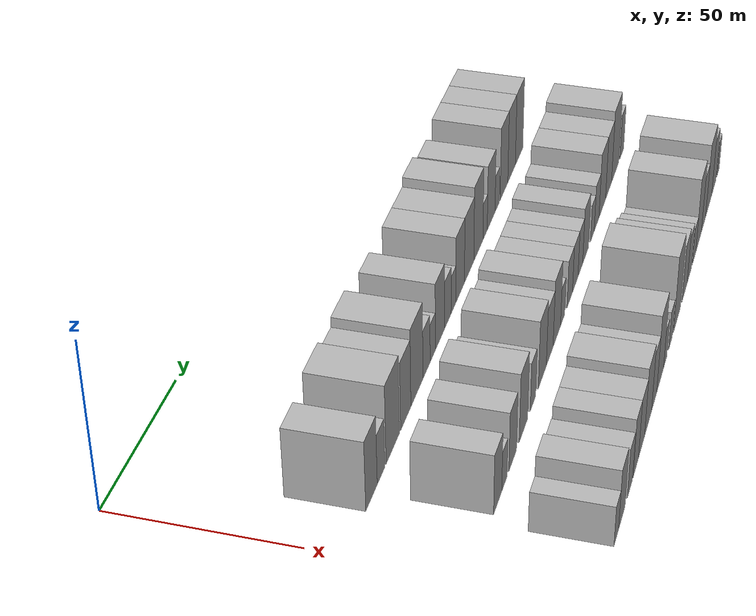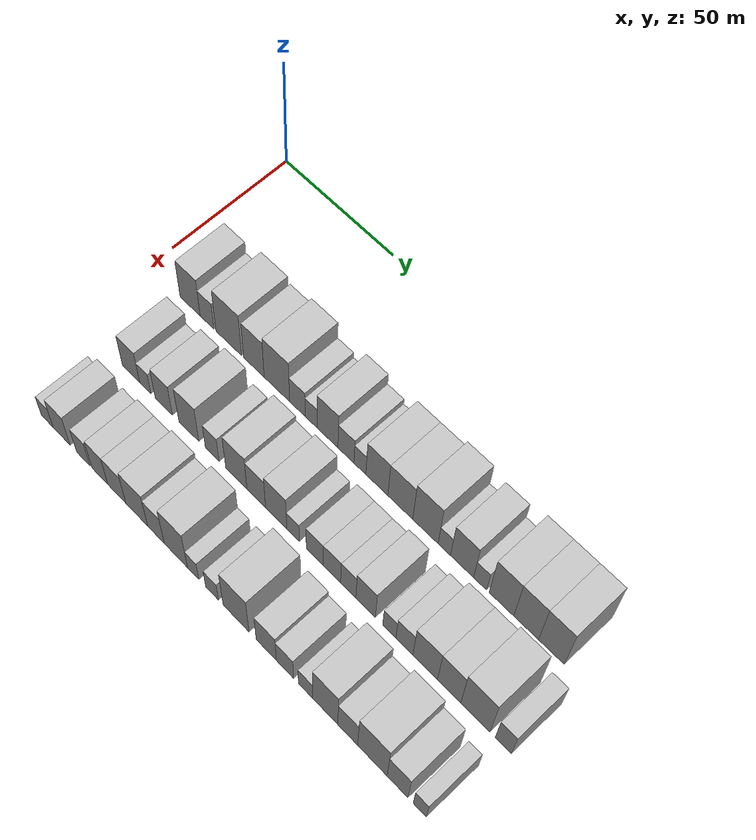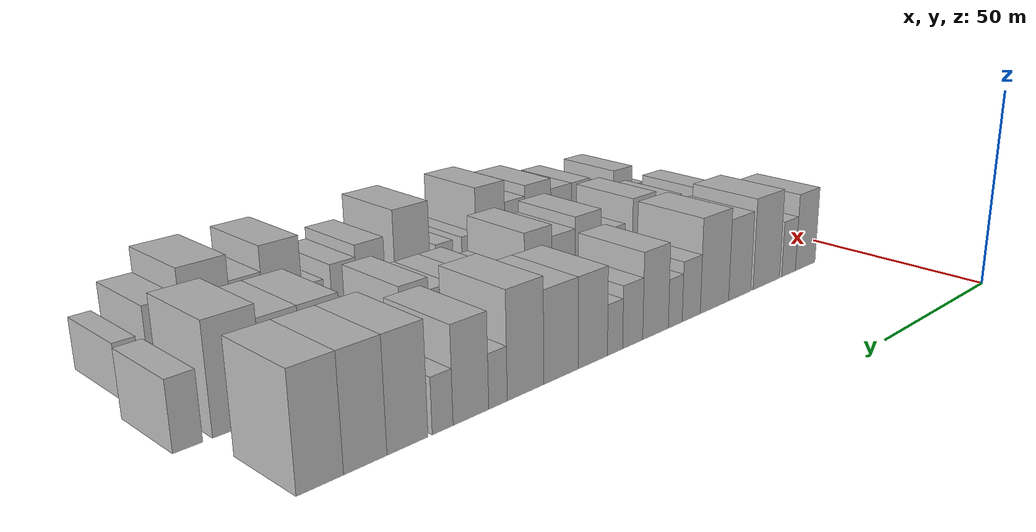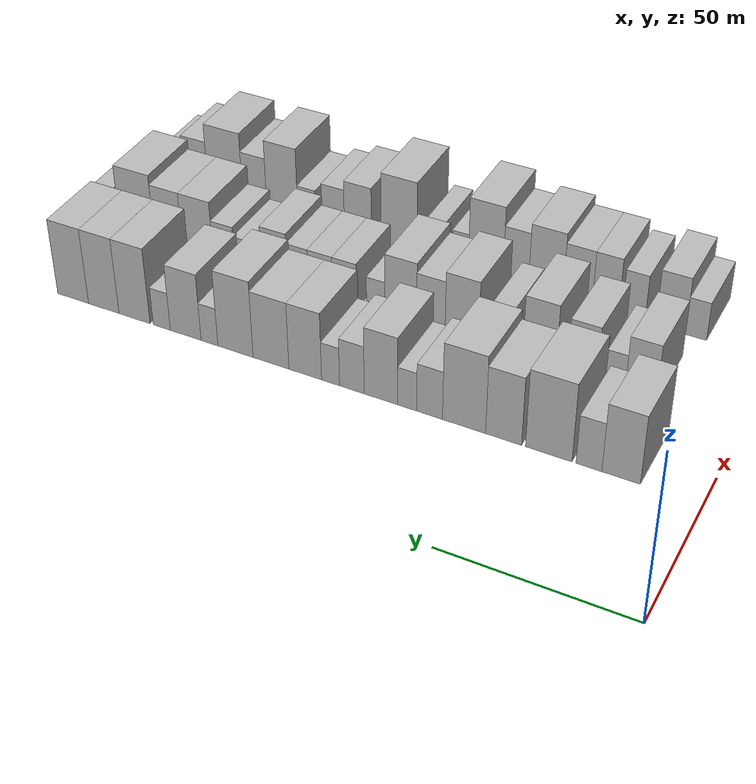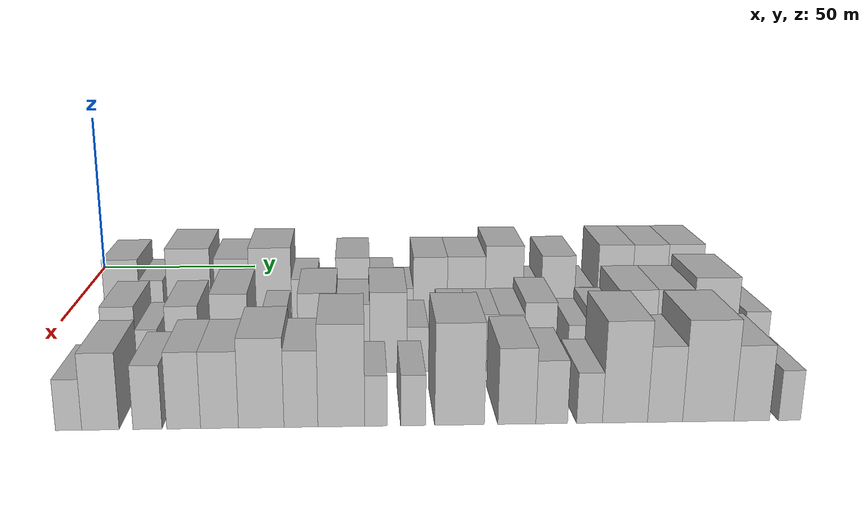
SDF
<sdf version="1.6">
 <world name="default">
  <model name="building_37">
   <static>1</static>
   <pose>50.0000 20.1480 0 0.000000 0.000000 0.000000</pose>
   <link name="link">
    <pose>0 0 10.50 0 0 0</pose>
    <collision name="collision"><geometry><box><size>20.0000 9.5758 21.0000</size></box></geometry></collision>
    <visual name="visual">
     <cast_shadows>0</cast_shadows>
     <geometry><box><size>20.0000 9.5758 21.0000</size></box></geometry>
     <material>
      <script>
       <uri>model://HANNAS_wall/materials/scripts</uri>
       <uri>model://HANNAS_wall/materials/textures</uri>
       <name>vrc/HANNAS_wall</name>
      </script>
     </material>
    </visual>
   </link>
  </model>
  <model name="building_38">
   <static>1</static>
   <pose>50.0000 28.1841 0 0.000000 0.000000 0.000000</pose>
   <link name="link">
    <pose>0 0 7.50 0 0 0</pose>
    <collision name="collision"><geometry><box><size>20.0000 6.4964 15.0000</size></box></geometry></collision>
    <visual name="visual">
     <cast_shadows>0</cast_shadows>
     <geometry><box><size>20.0000 6.4964 15.0000</size></box></geometry>
     <material>
      <script>
       <uri>model://HANNAS_wall/materials/scripts</uri>
       <uri>model://HANNAS_wall/materials/textures</uri>
       <name>vrc/HANNAS_wall</name>
      </script>
     </material>
    </visual>
   </link>
  </model>
  <model name="building_39">
   <static>1</static>
   <pose>50.0000 38.3976 0 0.000000 0.000000 0.000000</pose>
   <link name="link">
    <pose>0 0 12.00 0 0 0</pose>
    <collision name="collision"><geometry><box><size>20.0000 11.9307 24.0000</size></box></geometry></collision>
    <visual name="visual">
     <cast_shadows>0</cast_shadows>
     <geometry><box><size>20.0000 11.9307 24.0000</size></box></geometry>
     <material>
      <script>
       <uri>model://HANNAS_wall/materials/scripts</uri>
       <uri>model://HANNAS_wall/materials/textures</uri>
       <name>vrc/HANNAS_wall</name>
      </script>
     </material>
    </visual>
   </link>
  </model>
  <model name="building_40">
   <static>1</static>
   <pose>50.0000 50.0715 0 0.000000 0.000000 0.000000</pose>
   <link name="link">
    <pose>0 0 10.50 0 0 0</pose>
    <collision name="collision"><geometry><box><size>20.0000 9.4170 21.0000</size></box></geometry></collision>
    <visual name="visual">
     <cast_shadows>0</cast_shadows>
     <geometry><box><size>20.0000 9.4170 21.0000</size></box></geometry>
     <material>
      <script>
       <uri>model://HANNAS_wall/materials/scripts</uri>
       <uri>model://HANNAS_wall/materials/textures</uri>
       <name>vrc/HANNAS_wall</name>
      </script>
     </material>
    </visual>
   </link>
  </model>
  <model name="building_41">
   <static>1</static>
   <pose>50.0000 60.5149 0 0.000000 0.000000 0.000000</pose>
   <link name="link">
    <pose>0 0 12.00 0 0 0</pose>
    <collision name="collision"><geometry><box><size>20.0000 11.4699 24.0000</size></box></geometry></collision>
    <visual name="visual">
     <cast_shadows>0</cast_shadows>
     <geometry><box><size>20.0000 11.4699 24.0000</size></box></geometry>
     <material>
      <script>
       <uri>model://HANNAS_wall/materials/scripts</uri>
       <uri>model://HANNAS_wall/materials/textures</uri>
       <name>vrc/HANNAS_wall</name>
      </script>
     </material>
    </visual>
   </link>
  </model>
  <model name="building_42">
   <static>1</static>
   <pose>50.0000 69.7422 0 0.000000 0.000000 0.000000</pose>
   <link name="link">
    <pose>0 0 7.50 0 0 0</pose>
    <collision name="collision"><geometry><box><size>20.0000 6.9846 15.0000</size></box></geometry></collision>
    <visual name="visual">
     <cast_shadows>0</cast_shadows>
     <geometry><box><size>20.0000 6.9846 15.0000</size></box></geometry>
     <material>
      <script>
       <uri>model://HANNAS_wall/materials/scripts</uri>
       <uri>model://HANNAS_wall/materials/textures</uri>
       <name>vrc/HANNAS_wall</name>
      </script>
     </material>
    </visual>
   </link>
  </model>
  <model name="building_43">
   <static>1</static>
   <pose>50.0000 75.8215 0 0.000000 0.000000 0.000000</pose>
   <link name="link">
    <pose>0 0 6.00 0 0 0</pose>
    <collision name="collision"><geometry><box><size>20.0000 5.1740 12.0000</size></box></geometry></collision>
    <visual name="visual">
     <cast_shadows>0</cast_shadows>
     <geometry><box><size>20.0000 5.1740 12.0000</size></box></geometry>
     <material>
      <script>
       <uri>model://HANNAS_wall/materials/scripts</uri>
       <uri>model://HANNAS_wall/materials/textures</uri>
       <name>vrc/HANNAS_wall</name>
      </script>
     </material>
    </visual>
   </link>
  </model>
  <model name="building_44">
   <static>1</static>
   <pose>50.0000 83.0262 0 0.000000 0.000000 0.000000</pose>
   <link name="link">
    <pose>0 0 10.50 0 0 0</pose>
    <collision name="collision"><geometry><box><size>20.0000 9.2354 21.0000</size></box></geometry></collision>
    <visual name="visual">
     <cast_shadows>0</cast_shadows>
     <geometry><box><size>20.0000 9.2354 21.0000</size></box></geometry>
     <material>
      <script>
       <uri>model://HANNAS_wall/materials/scripts</uri>
       <uri>model://HANNAS_wall/materials/textures</uri>
       <name>vrc/HANNAS_wall</name>
      </script>
     </material>
    </visual>
   </link>
  </model>
  <model name="building_45">
   <static>1</static>
   <pose>50.0000 91.1143 0 0.000000 0.000000 0.000000</pose>
   <link name="link">
    <pose>0 0 7.50 0 0 0</pose>
    <collision name="collision"><geometry><box><size>20.0000 6.9408 15.0000</size></box></geometry></collision>
    <visual name="visual">
     <cast_shadows>0</cast_shadows>
     <geometry><box><size>20.0000 6.9408 15.0000</size></box></geometry>
     <material>
      <script>
       <uri>model://HANNAS_wall/materials/scripts</uri>
       <uri>model://HANNAS_wall/materials/textures</uri>
       <name>vrc/HANNAS_wall</name>
      </script>
     </material>
    </visual>
   </link>
  </model>
  <model name="building_46">
   <static>1</static>
   <pose>50.0000 97.1220 0 0.000000 0.000000 0.000000</pose>
   <link name="link">
    <pose>0 0 6.00 0 0 0</pose>
    <collision name="collision"><geometry><box><size>20.0000 5.0745 12.0000</size></box></geometry></collision>
    <visual name="visual">
     <cast_shadows>0</cast_shadows>
     <geometry><box><size>20.0000 5.0745 12.0000</size></box></geometry>
     <material>
      <script>
       <uri>model://HANNAS_wall/materials/scripts</uri>
       <uri>model://HANNAS_wall/materials/textures</uri>
       <name>vrc/HANNAS_wall</name>
      </script>
     </material>
    </visual>
   </link>
  </model>
  <model name="building_47">
   <static>1</static>
   <pose>50.0000 104.3414 0 0.000000 0.000000 0.000000</pose>
   <link name="link">
    <pose>0 0 10.50 0 0 0</pose>
    <collision name="collision"><geometry><box><size>20.0000 9.3645 21.0000</size></box></geometry></collision>
    <visual name="visual">
     <cast_shadows>0</cast_shadows>
     <geometry><box><size>20.0000 9.3645 21.0000</size></box></geometry>
     <material>
      <script>
       <uri>model://HANNAS_wall/materials/scripts</uri>
       <uri>model://HANNAS_wall/materials/textures</uri>
       <name>vrc/HANNAS_wall</name>
      </script>
     </material>
    </visual>
   </link>
  </model>
  <model name="building_48">
   <static>1</static>
   <pose>50.0000 114.2384 0 0.000000 0.000000 0.000000</pose>
   <link name="link">
    <pose>0 0 10.50 0 0 0</pose>
    <collision name="collision"><geometry><box><size>20.0000 10.4295 21.0000</size></box></geometry></collision>
    <visual name="visual">
     <cast_shadows>0</cast_shadows>
     <geometry><box><size>20.0000 10.4295 21.0000</size></box></geometry>
     <material>
      <script>
       <uri>model://HANNAS_wall/materials/scripts</uri>
       <uri>model://HANNAS_wall/materials/textures</uri>
       <name>vrc/HANNAS_wall</name>
      </script>
     </material>
    </visual>
   </link>
  </model>
  <model name="building_49">
   <static>1</static>
   <pose>50.0000 124.6758 0 0.000000 0.000000 0.000000</pose>
   <link name="link">
    <pose>0 0 12.00 0 0 0</pose>
    <collision name="collision"><geometry><box><size>20.0000 10.4453 24.0000</size></box></geometry></collision>
    <visual name="visual">
     <cast_shadows>0</cast_shadows>
     <geometry><box><size>20.0000 10.4453 24.0000</size></box></geometry>
     <material>
      <script>
       <uri>model://HANNAS_wall/materials/scripts</uri>
       <uri>model://HANNAS_wall/materials/textures</uri>
       <name>vrc/HANNAS_wall</name>
      </script>
     </material>
    </visual>
   </link>
  </model>
  <model name="building_50">
   <static>1</static>
   <pose>50.0000 132.4219 0 0.000000 0.000000 0.000000</pose>
   <link name="link">
    <pose>0 0 6.00 0 0 0</pose>
    <collision name="collision"><geometry><box><size>20.0000 5.0470 12.0000</size></box></geometry></collision>
    <visual name="visual">
     <cast_shadows>0</cast_shadows>
     <geometry><box><size>20.0000 5.0470 12.0000</size></box></geometry>
     <material>
      <script>
       <uri>model://HANNAS_wall/materials/scripts</uri>
       <uri>model://HANNAS_wall/materials/textures</uri>
       <name>vrc/HANNAS_wall</name>
      </script>
     </material>
    </visual>
   </link>
  </model>
  <model name="building_51">
   <static>1</static>
   <pose>50.0000 139.6037 0 0.000000 0.000000 0.000000</pose>
   <link name="link">
    <pose>0 0 10.50 0 0 0</pose>
    <collision name="collision"><geometry><box><size>20.0000 9.3167 21.0000</size></box></geometry></collision>
    <visual name="visual">
     <cast_shadows>0</cast_shadows>
     <geometry><box><size>20.0000 9.3167 21.0000</size></box></geometry>
     <material>
      <script>
       <uri>model://HANNAS_wall/materials/scripts</uri>
       <uri>model://HANNAS_wall/materials/textures</uri>
       <name>vrc/HANNAS_wall</name>
      </script>
     </material>
    </visual>
   </link>
  </model>
  <model name="building_52">
   <static>1</static>
   <pose>50.0000 146.8711 0 0.000000 0.000000 0.000000</pose>
   <link name="link">
    <pose>0 0 6.00 0 0 0</pose>
    <collision name="collision"><geometry><box><size>20.0000 5.2180 12.0000</size></box></geometry></collision>
    <visual name="visual">
     <cast_shadows>0</cast_shadows>
     <geometry><box><size>20.0000 5.2180 12.0000</size></box></geometry>
     <material>
      <script>
       <uri>model://HANNAS_wall/materials/scripts</uri>
       <uri>model://HANNAS_wall/materials/textures</uri>
       <name>vrc/HANNAS_wall</name>
      </script>
     </material>
    </visual>
   </link>
  </model>
  <model name="building_53">
   <static>1</static>
   <pose>50.0000 155.3191 0 0.000000 0.000000 0.000000</pose>
   <link name="link">
    <pose>0 0 12.00 0 0 0</pose>
    <collision name="collision"><geometry><box><size>20.0000 9.6781 24.0000</size></box></geometry></collision>
    <visual name="visual">
     <cast_shadows>0</cast_shadows>
     <geometry><box><size>20.0000 9.6781 24.0000</size></box></geometry>
     <material>
      <script>
       <uri>model://HANNAS_wall/materials/scripts</uri>
       <uri>model://HANNAS_wall/materials/textures</uri>
       <name>vrc/HANNAS_wall</name>
      </script>
     </material>
    </visual>
   </link>
  </model>
  <model name="building_54">
   <static>1</static>
   <pose>50.0000 164.9699 0 0.000000 0.000000 0.000000</pose>
   <link name="link">
    <pose>0 0 12.00 0 0 0</pose>
    <collision name="collision"><geometry><box><size>20.0000 9.6233 24.0000</size></box></geometry></collision>
    <visual name="visual">
     <cast_shadows>0</cast_shadows>
     <geometry><box><size>20.0000 9.6233 24.0000</size></box></geometry>
     <material>
      <script>
       <uri>model://HANNAS_wall/materials/scripts</uri>
       <uri>model://HANNAS_wall/materials/textures</uri>
       <name>vrc/HANNAS_wall</name>
      </script>
     </material>
    </visual>
   </link>
  </model>
  <model name="building_55">
   <static>1</static>
   <pose>50.0000 174.7138 0 0.000000 0.000000 0.000000</pose>
   <link name="link">
    <pose>0 0 12.00 0 0 0</pose>
    <collision name="collision"><geometry><box><size>20.0000 9.8645 24.0000</size></box></geometry></collision>
    <visual name="visual">
     <cast_shadows>0</cast_shadows>
     <geometry><box><size>20.0000 9.8645 24.0000</size></box></geometry>
     <material>
      <script>
       <uri>model://HANNAS_wall/materials/scripts</uri>
       <uri>model://HANNAS_wall/materials/textures</uri>
       <name>vrc/HANNAS_wall</name>
      </script>
     </material>
    </visual>
   </link>
  </model>
  <model name="building_116">
   <static>1</static>
   <pose>79.0000 25.8752 0 0.000000 0.000000 0.000000</pose>
   <link name="link">
    <pose>0 0 9.00 0 0 0</pose>
    <collision name="collision"><geometry><box><size>20.0000 8.2229 18.0000</size></box></geometry></collision>
    <visual name="visual">
     <cast_shadows>0</cast_shadows>
     <geometry><box><size>20.0000 8.2229 18.0000</size></box></geometry>
     <material>
      <script>
       <uri>model://HANNAS_wall/materials/scripts</uri>
       <uri>model://HANNAS_wall/materials/textures</uri>
       <name>vrc/HANNAS_wall</name>
      </script>
     </material>
    </visual>
   </link>
  </model>
  <model name="building_117">
   <static>1</static>
   <pose>79.0000 32.6592 0 0.000000 0.000000 0.000000</pose>
   <link name="link">
    <pose>0 0 6.00 0 0 0</pose>
    <collision name="collision"><geometry><box><size>20.0000 5.3452 12.0000</size></box></geometry></collision>
    <visual name="visual">
     <cast_shadows>0</cast_shadows>
     <geometry><box><size>20.0000 5.3452 12.0000</size></box></geometry>
     <material>
      <script>
       <uri>model://HANNAS_wall/materials/scripts</uri>
       <uri>model://HANNAS_wall/materials/textures</uri>
       <name>vrc/HANNAS_wall</name>
      </script>
     </material>
    </visual>
   </link>
  </model>
  <model name="building_118">
   <static>1</static>
   <pose>79.0000 41.3565 0 0.000000 0.000000 0.000000</pose>
   <link name="link">
    <pose>0 0 9.00 0 0 0</pose>
    <collision name="collision"><geometry><box><size>20.0000 8.0492 18.0000</size></box></geometry></collision>
    <visual name="visual">
     <cast_shadows>0</cast_shadows>
     <geometry><box><size>20.0000 8.0492 18.0000</size></box></geometry>
     <material>
      <script>
       <uri>model://HANNAS_wall/materials/scripts</uri>
       <uri>model://HANNAS_wall/materials/textures</uri>
       <name>vrc/HANNAS_wall</name>
      </script>
     </material>
    </visual>
   </link>
  </model>
  <model name="building_119">
   <static>1</static>
   <pose>79.0000 52.9645 0 0.000000 0.000000 0.000000</pose>
   <link name="link">
    <pose>0 0 10.50 0 0 0</pose>
    <collision name="collision"><geometry><box><size>20.0000 9.1668 21.0000</size></box></geometry></collision>
    <visual name="visual">
     <cast_shadows>0</cast_shadows>
     <geometry><box><size>20.0000 9.1668 21.0000</size></box></geometry>
     <material>
      <script>
       <uri>model://HANNAS_wall/materials/scripts</uri>
       <uri>model://HANNAS_wall/materials/textures</uri>
       <name>vrc/HANNAS_wall</name>
      </script>
     </material>
    </visual>
   </link>
  </model>
  <model name="building_120">
   <static>1</static>
   <pose>79.0000 63.6351 0 0.000000 0.000000 0.000000</pose>
   <link name="link">
    <pose>0 0 7.50 0 0 0</pose>
    <collision name="collision"><geometry><box><size>20.0000 6.1743 15.0000</size></box></geometry></collision>
    <visual name="visual">
     <cast_shadows>0</cast_shadows>
     <geometry><box><size>20.0000 6.1743 15.0000</size></box></geometry>
     <material>
      <script>
       <uri>model://HANNAS_wall/materials/scripts</uri>
       <uri>model://HANNAS_wall/materials/textures</uri>
       <name>vrc/HANNAS_wall</name>
      </script>
     </material>
    </visual>
   </link>
  </model>
  <model name="building_121">
   <static>1</static>
   <pose>79.0000 74.4459 0 0.000000 0.000000 0.000000</pose>
   <link name="link">
    <pose>0 0 10.50 0 0 0</pose>
    <collision name="collision"><geometry><box><size>20.0000 9.4473 21.0000</size></box></geometry></collision>
    <visual name="visual">
     <cast_shadows>0</cast_shadows>
     <geometry><box><size>20.0000 9.4473 21.0000</size></box></geometry>
     <material>
      <script>
       <uri>model://HANNAS_wall/materials/scripts</uri>
       <uri>model://HANNAS_wall/materials/textures</uri>
       <name>vrc/HANNAS_wall</name>
      </script>
     </material>
    </visual>
   </link>
  </model>
  <model name="building_122">
   <static>1</static>
   <pose>79.0000 83.2457 0 0.000000 0.000000 0.000000</pose>
   <link name="link">
    <pose>0 0 9.00 0 0 0</pose>
    <collision name="collision"><geometry><box><size>20.0000 8.1524 18.0000</size></box></geometry></collision>
    <visual name="visual">
     <cast_shadows>0</cast_shadows>
     <geometry><box><size>20.0000 8.1524 18.0000</size></box></geometry>
     <material>
      <script>
       <uri>model://HANNAS_wall/materials/scripts</uri>
       <uri>model://HANNAS_wall/materials/textures</uri>
       <name>vrc/HANNAS_wall</name>
      </script>
     </material>
    </visual>
   </link>
  </model>
  <model name="building_123">
   <static>1</static>
   <pose>79.0000 91.9345 0 0.000000 0.000000 0.000000</pose>
   <link name="link">
    <pose>0 0 10.50 0 0 0</pose>
    <collision name="collision"><geometry><box><size>20.0000 9.2253 21.0000</size></box></geometry></collision>
    <visual name="visual">
     <cast_shadows>0</cast_shadows>
     <geometry><box><size>20.0000 9.2253 21.0000</size></box></geometry>
     <material>
      <script>
       <uri>model://HANNAS_wall/materials/scripts</uri>
       <uri>model://HANNAS_wall/materials/textures</uri>
       <name>vrc/HANNAS_wall</name>
      </script>
     </material>
    </visual>
   </link>
  </model>
  <model name="building_124">
   <static>1</static>
   <pose>79.0000 99.2142 0 0.000000 0.000000 0.000000</pose>
   <link name="link">
    <pose>0 0 6.00 0 0 0</pose>
    <collision name="collision"><geometry><box><size>20.0000 5.3341 12.0000</size></box></geometry></collision>
    <visual name="visual">
     <cast_shadows>0</cast_shadows>
     <geometry><box><size>20.0000 5.3341 12.0000</size></box></geometry>
     <material>
      <script>
       <uri>model://HANNAS_wall/materials/scripts</uri>
       <uri>model://HANNAS_wall/materials/textures</uri>
       <name>vrc/HANNAS_wall</name>
      </script>
     </material>
    </visual>
   </link>
  </model>
  <model name="building_125">
   <static>1</static>
   <pose>79.0000 108.4288 0 0.000000 0.000000 0.000000</pose>
   <link name="link">
    <pose>0 0 7.50 0 0 0</pose>
    <collision name="collision"><geometry><box><size>20.0000 7.0950 15.0000</size></box></geometry></collision>
    <visual name="visual">
     <cast_shadows>0</cast_shadows>
     <geometry><box><size>20.0000 7.0950 15.0000</size></box></geometry>
     <material>
      <script>
       <uri>model://HANNAS_wall/materials/scripts</uri>
       <uri>model://HANNAS_wall/materials/textures</uri>
       <name>vrc/HANNAS_wall</name>
      </script>
     </material>
    </visual>
   </link>
  </model>
  <model name="building_126">
   <static>1</static>
   <pose>79.0000 115.6472 0 0.000000 0.000000 0.000000</pose>
   <link name="link">
    <pose>0 0 7.50 0 0 0</pose>
    <collision name="collision"><geometry><box><size>20.0000 7.3418 15.0000</size></box></geometry></collision>
    <visual name="visual">
     <cast_shadows>0</cast_shadows>
     <geometry><box><size>20.0000 7.3418 15.0000</size></box></geometry>
     <material>
      <script>
       <uri>model://HANNAS_wall/materials/scripts</uri>
       <uri>model://HANNAS_wall/materials/textures</uri>
       <name>vrc/HANNAS_wall</name>
      </script>
     </material>
    </visual>
   </link>
  </model>
  <model name="building_127">
   <static>1</static>
   <pose>79.0000 122.4901 0 0.000000 0.000000 0.000000</pose>
   <link name="link">
    <pose>0 0 7.50 0 0 0</pose>
    <collision name="collision"><geometry><box><size>20.0000 6.3440 15.0000</size></box></geometry></collision>
    <visual name="visual">
     <cast_shadows>0</cast_shadows>
     <geometry><box><size>20.0000 6.3440 15.0000</size></box></geometry>
     <material>
      <script>
       <uri>model://HANNAS_wall/materials/scripts</uri>
       <uri>model://HANNAS_wall/materials/textures</uri>
       <name>vrc/HANNAS_wall</name>
      </script>
     </material>
    </visual>
   </link>
  </model>
  <model name="building_128">
   <static>1</static>
   <pose>79.0000 129.6379 0 0.000000 0.000000 0.000000</pose>
   <link name="link">
    <pose>0 0 9.00 0 0 0</pose>
    <collision name="collision"><geometry><box><size>20.0000 7.9515 18.0000</size></box></geometry></collision>
    <visual name="visual">
     <cast_shadows>0</cast_shadows>
     <geometry><box><size>20.0000 7.9515 18.0000</size></box></geometry>
     <material>
      <script>
       <uri>model://HANNAS_wall/materials/scripts</uri>
       <uri>model://HANNAS_wall/materials/textures</uri>
       <name>vrc/HANNAS_wall</name>
      </script>
     </material>
    </visual>
   </link>
  </model>
  <model name="building_129">
   <static>1</static>
   <pose>79.0000 139.2753 0 0.000000 0.000000 0.000000</pose>
   <link name="link">
    <pose>0 0 6.00 0 0 0</pose>
    <collision name="collision"><geometry><box><size>20.0000 5.3234 12.0000</size></box></geometry></collision>
    <visual name="visual">
     <cast_shadows>0</cast_shadows>
     <geometry><box><size>20.0000 5.3234 12.0000</size></box></geometry>
     <material>
      <script>
       <uri>model://HANNAS_wall/materials/scripts</uri>
       <uri>model://HANNAS_wall/materials/textures</uri>
       <name>vrc/HANNAS_wall</name>
      </script>
     </material>
    </visual>
   </link>
  </model>
  <model name="building_130">
   <static>1</static>
   <pose>79.0000 145.3394 0 0.000000 0.000000 0.000000</pose>
   <link name="link">
    <pose>0 0 7.50 0 0 0</pose>
    <collision name="collision"><geometry><box><size>20.0000 6.8048 15.0000</size></box></geometry></collision>
    <visual name="visual">
     <cast_shadows>0</cast_shadows>
     <geometry><box><size>20.0000 6.8048 15.0000</size></box></geometry>
     <material>
      <script>
       <uri>model://HANNAS_wall/materials/scripts</uri>
       <uri>model://HANNAS_wall/materials/textures</uri>
       <name>vrc/HANNAS_wall</name>
      </script>
     </material>
    </visual>
   </link>
  </model>
  <model name="building_131">
   <static>1</static>
   <pose>79.0000 153.6090 0 0.000000 0.000000 0.000000</pose>
   <link name="link">
    <pose>0 0 10.50 0 0 0</pose>
    <collision name="collision"><geometry><box><size>20.0000 9.7343 21.0000</size></box></geometry></collision>
    <visual name="visual">
     <cast_shadows>0</cast_shadows>
     <geometry><box><size>20.0000 9.7343 21.0000</size></box></geometry>
     <material>
      <script>
       <uri>model://HANNAS_wall/materials/scripts</uri>
       <uri>model://HANNAS_wall/materials/textures</uri>
       <name>vrc/HANNAS_wall</name>
      </script>
     </material>
    </visual>
   </link>
  </model>
  <model name="building_132">
   <static>1</static>
   <pose>79.0000 163.0174 0 0.000000 0.000000 0.000000</pose>
   <link name="link">
    <pose>0 0 10.50 0 0 0</pose>
    <collision name="collision"><geometry><box><size>20.0000 9.0825 21.0000</size></box></geometry></collision>
    <visual name="visual">
     <cast_shadows>0</cast_shadows>
     <geometry><box><size>20.0000 9.0825 21.0000</size></box></geometry>
     <material>
      <script>
       <uri>model://HANNAS_wall/materials/scripts</uri>
       <uri>model://HANNAS_wall/materials/textures</uri>
       <name>vrc/HANNAS_wall</name>
      </script>
     </material>
    </visual>
   </link>
  </model>
  <model name="building_133">
   <static>1</static>
   <pose>79.0000 173.1660 0 0.000000 0.000000 0.000000</pose>
   <link name="link">
    <pose>0 0 12.00 0 0 0</pose>
    <collision name="collision"><geometry><box><size>20.0000 11.2146 24.0000</size></box></geometry></collision>
    <visual name="visual">
     <cast_shadows>0</cast_shadows>
     <geometry><box><size>20.0000 11.2146 24.0000</size></box></geometry>
     <material>
      <script>
       <uri>model://HANNAS_wall/materials/scripts</uri>
       <uri>model://HANNAS_wall/materials/textures</uri>
       <name>vrc/HANNAS_wall</name>
      </script>
     </material>
    </visual>
   </link>
  </model>
  <model name="building_134">
   <static>1</static>
   <pose>79.0000 183.8312 0 0.000000 0.000000 0.000000</pose>
   <link name="link">
    <pose>0 0 7.50 0 0 0</pose>
    <collision name="collision"><geometry><box><size>20.0000 6.1160 15.0000</size></box></geometry></collision>
    <visual name="visual">
     <cast_shadows>0</cast_shadows>
     <geometry><box><size>20.0000 6.1160 15.0000</size></box></geometry>
     <material>
      <script>
       <uri>model://HANNAS_wall/materials/scripts</uri>
       <uri>model://HANNAS_wall/materials/textures</uri>
       <name>vrc/HANNAS_wall</name>
      </script>
     </material>
    </visual>
   </link>
  </model>
  <model name="building_189">
   <static>1</static>
   <pose>108.0000 21.1724 0 0.000000 0.000000 0.000000</pose>
   <link name="link">
    <pose>0 0 6.00 0 0 0</pose>
    <collision name="collision"><geometry><box><size>20.0000 5.7033 12.0000</size></box></geometry></collision>
    <visual name="visual">
     <cast_shadows>0</cast_shadows>
     <geometry><box><size>20.0000 5.7033 12.0000</size></box></geometry>
     <material>
      <script>
       <uri>model://HANNAS_wall/materials/scripts</uri>
       <uri>model://HANNAS_wall/materials/textures</uri>
       <name>vrc/HANNAS_wall</name>
      </script>
     </material>
    </visual>
   </link>
  </model>
  <model name="building_190">
   <static>1</static>
   <pose>108.0000 28.0757 0 0.000000 0.000000 0.000000</pose>
   <link name="link">
    <pose>0 0 9.00 0 0 0</pose>
    <collision name="collision"><geometry><box><size>20.0000 8.1032 18.0000</size></box></geometry></collision>
    <visual name="visual">
     <cast_shadows>0</cast_shadows>
     <geometry><box><size>20.0000 8.1032 18.0000</size></box></geometry>
     <material>
      <script>
       <uri>model://HANNAS_wall/materials/scripts</uri>
       <uri>model://HANNAS_wall/materials/textures</uri>
       <name>vrc/HANNAS_wall</name>
      </script>
     </material>
    </visual>
   </link>
  </model>
  <model name="building_191">
   <static>1</static>
   <pose>108.0000 38.2948 0 0.000000 0.000000 0.000000</pose>
   <link name="link">
    <pose>0 0 7.50 0 0 0</pose>
    <collision name="collision"><geometry><box><size>20.0000 6.3350 15.0000</size></box></geometry></collision>
    <visual name="visual">
     <cast_shadows>0</cast_shadows>
     <geometry><box><size>20.0000 6.3350 15.0000</size></box></geometry>
     <material>
      <script>
       <uri>model://HANNAS_wall/materials/scripts</uri>
       <uri>model://HANNAS_wall/materials/textures</uri>
       <name>vrc/HANNAS_wall</name>
      </script>
     </material>
    </visual>
   </link>
  </model>
  <model name="building_192">
   <static>1</static>
   <pose>108.0000 46.1655 0 0.000000 0.000000 0.000000</pose>
   <link name="link">
    <pose>0 0 9.00 0 0 0</pose>
    <collision name="collision"><geometry><box><size>20.0000 7.4064 18.0000</size></box></geometry></collision>
    <visual name="visual">
     <cast_shadows>0</cast_shadows>
     <geometry><box><size>20.0000 7.4064 18.0000</size></box></geometry>
     <material>
      <script>
       <uri>model://HANNAS_wall/materials/scripts</uri>
       <uri>model://HANNAS_wall/materials/textures</uri>
       <name>vrc/HANNAS_wall</name>
      </script>
     </material>
    </visual>
   </link>
  </model>
  <model name="building_193">
   <static>1</static>
   <pose>108.0000 54.0045 0 0.000000 0.000000 0.000000</pose>
   <link name="link">
    <pose>0 0 9.00 0 0 0</pose>
    <collision name="collision"><geometry><box><size>20.0000 8.2718 18.0000</size></box></geometry></collision>
    <visual name="visual">
     <cast_shadows>0</cast_shadows>
     <geometry><box><size>20.0000 8.2718 18.0000</size></box></geometry>
     <material>
      <script>
       <uri>model://HANNAS_wall/materials/scripts</uri>
       <uri>model://HANNAS_wall/materials/textures</uri>
       <name>vrc/HANNAS_wall</name>
      </script>
     </material>
    </visual>
   </link>
  </model>
  <model name="building_194">
   <static>1</static>
   <pose>108.0000 63.1205 0 0.000000 0.000000 0.000000</pose>
   <link name="link">
    <pose>0 0 10.50 0 0 0</pose>
    <collision name="collision"><geometry><box><size>20.0000 9.9602 21.0000</size></box></geometry></collision>
    <visual name="visual">
     <cast_shadows>0</cast_shadows>
     <geometry><box><size>20.0000 9.9602 21.0000</size></box></geometry>
     <material>
      <script>
       <uri>model://HANNAS_wall/materials/scripts</uri>
       <uri>model://HANNAS_wall/materials/textures</uri>
       <name>vrc/HANNAS_wall</name>
      </script>
     </material>
    </visual>
   </link>
  </model>
  <model name="building_195">
   <static>1</static>
   <pose>108.0000 71.8238 0 0.000000 0.000000 0.000000</pose>
   <link name="link">
    <pose>0 0 9.00 0 0 0</pose>
    <collision name="collision"><geometry><box><size>20.0000 7.4462 18.0000</size></box></geometry></collision>
    <visual name="visual">
     <cast_shadows>0</cast_shadows>
     <geometry><box><size>20.0000 7.4462 18.0000</size></box></geometry>
     <material>
      <script>
       <uri>model://HANNAS_wall/materials/scripts</uri>
       <uri>model://HANNAS_wall/materials/textures</uri>
       <name>vrc/HANNAS_wall</name>
      </script>
     </material>
    </visual>
   </link>
  </model>
  <model name="building_196">
   <static>1</static>
   <pose>108.0000 80.6875 0 0.000000 0.000000 0.000000</pose>
   <link name="link">
    <pose>0 0 12.00 0 0 0</pose>
    <collision name="collision"><geometry><box><size>20.0000 10.2812 24.0000</size></box></geometry></collision>
    <visual name="visual">
     <cast_shadows>0</cast_shadows>
     <geometry><box><size>20.0000 10.2812 24.0000</size></box></geometry>
     <material>
      <script>
       <uri>model://HANNAS_wall/materials/scripts</uri>
       <uri>model://HANNAS_wall/materials/textures</uri>
       <name>vrc/HANNAS_wall</name>
      </script>
     </material>
    </visual>
   </link>
  </model>
  <model name="building_197">
   <static>1</static>
   <pose>108.0000 88.2899 0 0.000000 0.000000 0.000000</pose>
   <link name="link">
    <pose>0 0 6.00 0 0 0</pose>
    <collision name="collision"><geometry><box><size>20.0000 4.9237 12.0000</size></box></geometry></collision>
    <visual name="visual">
     <cast_shadows>0</cast_shadows>
     <geometry><box><size>20.0000 4.9237 12.0000</size></box></geometry>
     <material>
      <script>
       <uri>model://HANNAS_wall/materials/scripts</uri>
       <uri>model://HANNAS_wall/materials/textures</uri>
       <name>vrc/HANNAS_wall</name>
      </script>
     </material>
    </visual>
   </link>
  </model>
  <model name="building_198">
   <static>1</static>
   <pose>108.0000 96.5234 0 0.000000 0.000000 0.000000</pose>
   <link name="link">
    <pose>0 0 6.00 0 0 0</pose>
    <collision name="collision"><geometry><box><size>20.0000 5.5434 12.0000</size></box></geometry></collision>
    <visual name="visual">
     <cast_shadows>0</cast_shadows>
     <geometry><box><size>20.0000 5.5434 12.0000</size></box></geometry>
     <material>
      <script>
       <uri>model://HANNAS_wall/materials/scripts</uri>
       <uri>model://HANNAS_wall/materials/textures</uri>
       <name>vrc/HANNAS_wall</name>
      </script>
     </material>
    </visual>
   </link>
  </model>
  <model name="building_199">
   <static>1</static>
   <pose>108.0000 106.7974 0 0.000000 0.000000 0.000000</pose>
   <link name="link">
    <pose>0 0 12.00 0 0 0</pose>
    <collision name="collision"><geometry><box><size>20.0000 11.0045 24.0000</size></box></geometry></collision>
    <visual name="visual">
     <cast_shadows>0</cast_shadows>
     <geometry><box><size>20.0000 11.0045 24.0000</size></box></geometry>
     <material>
      <script>
       <uri>model://HANNAS_wall/materials/scripts</uri>
       <uri>model://HANNAS_wall/materials/textures</uri>
       <name>vrc/HANNAS_wall</name>
      </script>
     </material>
    </visual>
   </link>
  </model>
  <model name="building_200">
   <static>1</static>
   <pose>108.0000 119.5145 0 0.000000 0.000000 0.000000</pose>
   <link name="link">
    <pose>0 0 9.00 0 0 0</pose>
    <collision name="collision"><geometry><box><size>20.0000 8.4298 18.0000</size></box></geometry></collision>
    <visual name="visual">
     <cast_shadows>0</cast_shadows>
     <geometry><box><size>20.0000 8.4298 18.0000</size></box></geometry>
     <material>
      <script>
       <uri>model://HANNAS_wall/materials/scripts</uri>
       <uri>model://HANNAS_wall/materials/textures</uri>
       <name>vrc/HANNAS_wall</name>
      </script>
     </material>
    </visual>
   </link>
  </model>
  <model name="building_201">
   <static>1</static>
   <pose>108.0000 127.2751 0 0.000000 0.000000 0.000000</pose>
   <link name="link">
    <pose>0 0 7.50 0 0 0</pose>
    <collision name="collision"><geometry><box><size>20.0000 7.0914 15.0000</size></box></geometry></collision>
    <visual name="visual">
     <cast_shadows>0</cast_shadows>
     <geometry><box><size>20.0000 7.0914 15.0000</size></box></geometry>
     <material>
      <script>
       <uri>model://HANNAS_wall/materials/scripts</uri>
       <uri>model://HANNAS_wall/materials/textures</uri>
       <name>vrc/HANNAS_wall</name>
      </script>
     </material>
    </visual>
   </link>
  </model>
  <model name="building_202">
   <static>1</static>
   <pose>108.0000 135.6939 0 0.000000 0.000000 0.000000</pose>
   <link name="link">
    <pose>0 0 6.00 0 0 0</pose>
    <collision name="collision"><geometry><box><size>20.0000 5.7462 12.0000</size></box></geometry></collision>
    <visual name="visual">
     <cast_shadows>0</cast_shadows>
     <geometry><box><size>20.0000 5.7462 12.0000</size></box></geometry>
     <material>
      <script>
       <uri>model://HANNAS_wall/materials/scripts</uri>
       <uri>model://HANNAS_wall/materials/textures</uri>
       <name>vrc/HANNAS_wall</name>
      </script>
     </material>
    </visual>
   </link>
  </model>
  <model name="building_203">
   <static>1</static>
   <pose>108.0000 143.6139 0 0.000000 0.000000 0.000000</pose>
   <link name="link">
    <pose>0 0 12.00 0 0 0</pose>
    <collision name="collision"><geometry><box><size>20.0000 10.0938 24.0000</size></box></geometry></collision>
    <visual name="visual">
     <cast_shadows>0</cast_shadows>
     <geometry><box><size>20.0000 10.0938 24.0000</size></box></geometry>
     <material>
      <script>
       <uri>model://HANNAS_wall/materials/scripts</uri>
       <uri>model://HANNAS_wall/materials/textures</uri>
       <name>vrc/HANNAS_wall</name>
      </script>
     </material>
    </visual>
   </link>
  </model>
  <model name="building_204">
   <static>1</static>
   <pose>108.0000 152.5997 0 0.000000 0.000000 0.000000</pose>
   <link name="link">
    <pose>0 0 9.00 0 0 0</pose>
    <collision name="collision"><geometry><box><size>20.0000 7.8777 18.0000</size></box></geometry></collision>
    <visual name="visual">
     <cast_shadows>0</cast_shadows>
     <geometry><box><size>20.0000 7.8777 18.0000</size></box></geometry>
     <material>
      <script>
       <uri>model://HANNAS_wall/materials/scripts</uri>
       <uri>model://HANNAS_wall/materials/textures</uri>
       <name>vrc/HANNAS_wall</name>
      </script>
     </material>
    </visual>
   </link>
  </model>
  <model name="building_205">
   <static>1</static>
   <pose>108.0000 162.3032 0 0.000000 0.000000 0.000000</pose>
   <link name="link">
    <pose>0 0 12.00 0 0 0</pose>
    <collision name="collision"><geometry><box><size>20.0000 11.5294 24.0000</size></box></geometry></collision>
    <visual name="visual">
     <cast_shadows>0</cast_shadows>
     <geometry><box><size>20.0000 11.5294 24.0000</size></box></geometry>
     <material>
      <script>
       <uri>model://HANNAS_wall/materials/scripts</uri>
       <uri>model://HANNAS_wall/materials/textures</uri>
       <name>vrc/HANNAS_wall</name>
      </script>
     </material>
    </visual>
   </link>
  </model>
  <model name="building_206">
   <static>1</static>
   <pose>108.0000 172.0936 0 0.000000 0.000000 0.000000</pose>
   <link name="link">
    <pose>0 0 9.00 0 0 0</pose>
    <collision name="collision"><geometry><box><size>20.0000 8.0514 18.0000</size></box></geometry></collision>
    <visual name="visual">
     <cast_shadows>0</cast_shadows>
     <geometry><box><size>20.0000 8.0514 18.0000</size></box></geometry>
     <material>
      <script>
       <uri>model://HANNAS_wall/materials/scripts</uri>
       <uri>model://HANNAS_wall/materials/textures</uri>
       <name>vrc/HANNAS_wall</name>
      </script>
     </material>
    </visual>
   </link>
  </model>
  <model name="building_207">
   <static>1</static>
   <pose>108.0000 180.6140 0 0.000000 0.000000 0.000000</pose>
   <link name="link">
    <pose>0 0 6.00 0 0 0</pose>
    <collision name="collision"><geometry><box><size>20.0000 4.9896 12.0000</size></box></geometry></collision>
    <visual name="visual">
     <cast_shadows>0</cast_shadows>
     <geometry><box><size>20.0000 4.9896 12.0000</size></box></geometry>
     <material>
      <script>
       <uri>model://HANNAS_wall/materials/scripts</uri>
       <uri>model://HANNAS_wall/materials/textures</uri>
       <name>vrc/HANNAS_wall</name>
      </script>
     </material>
    </visual>
   </link>
  </model>
 </world>
</sdf>
